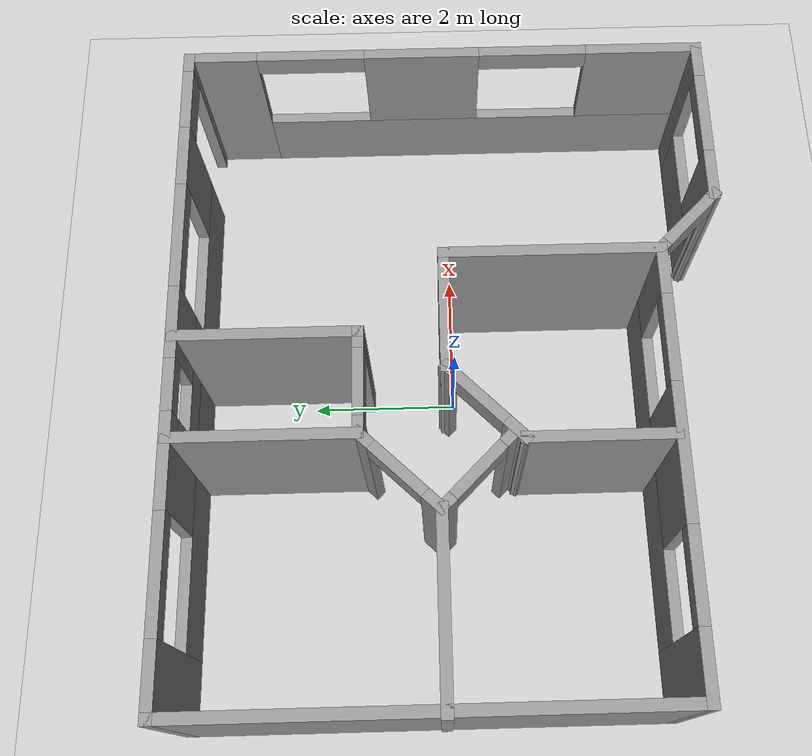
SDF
<sdf version="1.7">
 <world name="default">
  <light name="sun" type="directional">
   <pose>0 0 10 0 -0 0</pose>
   <diffuse>0.8 0.8 0.8 1</diffuse>
   <specular>0.2 0.2 0.2 1</specular>
   <attenuation>
    <range>1000</range>
    <constant>0.9</constant>
    <linear>0.01</linear>
    <quadratic>0.001</quadratic>
   </attenuation>
   <direction>-0.5 0.1 -0.9</direction>
   <spot><inner_angle>0</inner_angle><outer_angle>0</outer_angle><falloff>0</falloff></spot>
  </light>
  <model name="ground_plane">
   <static>1</static>
   <link name="link">
    <collision name="collision">
     <geometry><plane><normal>0 0 1</normal><size>100 100</size></plane></geometry>
     <surface>
      <contact><collide_bitmask>65535</collide_bitmask></contact>
      <friction><ode><mu>100</mu><mu2>50</mu2></ode></friction>
     </surface>
    </collision>
    <visual name="visual">
     <cast_shadows>0</cast_shadows>
     <geometry><plane><normal>0 0 1</normal><size>100 100</size></plane></geometry>
     <material>
      <script><uri>file://media/materials/scripts/gazebo.material</uri><name>Gazebo/Grey</name></script>
     </material>
    </visual>
   </link>
  </model>
  <gravity>0 0 -9.8</gravity>
  <magnetic_field>6e-06 2.3e-05 -4.2e-05</magnetic_field>
  <atmosphere type="adiabatic"/>
  <physics type="ode">
   <max_step_size>0.001</max_step_size>
   <real_time_factor>1</real_time_factor>
   <real_time_update_rate>1000</real_time_update_rate>
  </physics>
  <scene><ambient>0.4 0.4 0.4 1</ambient><background>0.7 0.7 0.7 1</background><shadows>1</shadows></scene>
  <spherical_coordinates>
   <surface_model>EARTH_WGS84</surface_model>
   <latitude_deg>0</latitude_deg>
   <longitude_deg>0</longitude_deg>
   <elevation>0</elevation>
   <heading_deg>0</heading_deg>
  </spherical_coordinates>
  <model name="modelo">
   <pose>-0.032278 0.017411 0 0 -0 0</pose>
   <link name="Wall_0">
    <pose>0.0115 3.56553 0 0 -0 0</pose>
    <visual name="Wall_0_Visual_0">
     <pose>-4.021 0 1.25 0 -0 0</pose>
     <geometry><box><size>0.958 0.15 2.5</size></box></geometry>
     <material>
      <script><uri>file://media/materials/scripts/gazebo.material</uri><name>Gazebo/Grey</name></script>
      <ambient>1 1 1 1</ambient>
     </material>
     <meta><layer>0</layer></meta>
    </visual>
    <collision name="Wall_0_Collision_0">
     <geometry><box><size>0.958 0.15 2.5</size></box></geometry>
     <pose>-4.021 0 1.25 0 -0 0</pose>
    </collision>
    <visual name="Wall_0_Visual_1">
     <pose>4.35075 0 1.25 0 -0 0</pose>
     <geometry><box><size>0.2985 0.15 2.5</size></box></geometry>
     <material>
      <script><uri>file://media/materials/scripts/gazebo.material</uri><name>Gazebo/Grey</name></script>
      <ambient>1 1 1 1</ambient>
     </material>
     <meta><layer>0</layer></meta>
    </visual>
    <collision name="Wall_0_Collision_1">
     <geometry><box><size>0.2985 0.15 2.5</size></box></geometry>
     <pose>4.35075 0 1.25 0 -0 0</pose>
    </collision>
    <visual name="Wall_0_Visual_2">
     <pose>-0.12025 0 0.5 0 -0 0</pose>
     <geometry><box><size>6.8435 0.15 1</size></box></geometry>
     <material>
      <script><uri>file://media/materials/scripts/gazebo.material</uri><name>Gazebo/Grey</name></script>
      <ambient>1 1 1 1</ambient>
     </material>
     <meta><layer>0</layer></meta>
    </visual>
    <collision name="Wall_0_Collision_2">
     <geometry><box><size>6.8435 0.15 1</size></box></geometry>
     <pose>-0.12025 0 0.5 0 -0 0</pose>
    </collision>
    <visual name="Wall_0_Visual_3">
     <pose>-1.41325 0 1.75 0 -0 0</pose>
     <geometry><box><size>1.2575 0.15 1.5</size></box></geometry>
     <material>
      <script><uri>file://media/materials/scripts/gazebo.material</uri><name>Gazebo/Grey</name></script>
      <ambient>1 1 1 1</ambient>
     </material>
     <meta><layer>0</layer></meta>
    </visual>
    <collision name="Wall_0_Collision_3">
     <geometry><box><size>1.2575 0.15 1.5</size></box></geometry>
     <pose>-1.41325 0 1.75 0 -0 0</pose>
    </collision>
    <visual name="Wall_0_Visual_4">
     <pose>2.855 0 1.75 0 -0 0</pose>
     <geometry><box><size>0.893 0.15 1.5</size></box></geometry>
     <material>
      <script><uri>file://media/materials/scripts/gazebo.material</uri><name>Gazebo/Grey</name></script>
      <ambient>1 1 1 1</ambient>
     </material>
     <meta><layer>0</layer></meta>
    </visual>
    <collision name="Wall_0_Collision_4">
     <geometry><box><size>0.893 0.15 1.5</size></box></geometry>
     <pose>2.855 0 1.75 0 -0 0</pose>
    </collision>
    <visual name="Wall_0_Visual_5">
     <pose>0.062 0 1.25 0 -0 0</pose>
     <geometry><box><size>1.693 0.15 0.5</size></box></geometry>
     <material>
      <script><uri>file://media/materials/scripts/gazebo.material</uri><name>Gazebo/Grey</name></script>
      <ambient>1 1 1 1</ambient>
     </material>
     <meta><layer>0</layer></meta>
    </visual>
    <collision name="Wall_0_Collision_5">
     <geometry><box><size>1.693 0.15 0.5</size></box></geometry>
     <pose>0.062 0 1.25 0 -0 0</pose>
    </collision>
    <visual name="Wall_0_Visual_6">
     <pose>0.412 0 2 0 -0 0</pose>
     <geometry><box><size>0.993 0.15 1</size></box></geometry>
     <material>
      <script><uri>file://media/materials/scripts/gazebo.material</uri><name>Gazebo/Grey</name></script>
      <ambient>1 1 1 1</ambient>
     </material>
     <meta><layer>0</layer></meta>
    </visual>
    <collision name="Wall_0_Collision_6">
     <geometry><box><size>0.993 0.15 1</size></box></geometry>
     <pose>0.412 0 2 0 -0 0</pose>
    </collision>
    <visual name="Wall_0_Visual_7">
     <pose>3.7515 0 2.3 0 -0 0</pose>
     <geometry><box><size>0.9 0.15 0.4</size></box></geometry>
     <material>
      <script><uri>file://media/materials/scripts/gazebo.material</uri><name>Gazebo/Grey</name></script>
      <ambient>1 1 1 1</ambient>
     </material>
     <meta><layer>0</layer></meta>
    </visual>
    <collision name="Wall_0_Collision_7">
     <geometry><box><size>0.9 0.15 0.4</size></box></geometry>
     <pose>3.7515 0 2.3 0 -0 0</pose>
    </collision>
    <visual name="Wall_0_Visual_8">
     <pose>-2.792 0 2.35 0 -0 0</pose>
     <geometry><box><size>1.5 0.15 0.3</size></box></geometry>
     <material>
      <script><uri>file://media/materials/scripts/gazebo.material</uri><name>Gazebo/Grey</name></script>
      <ambient>1 1 1 1</ambient>
     </material>
     <meta><layer>0</layer></meta>
    </visual>
    <collision name="Wall_0_Collision_8">
     <geometry><box><size>1.5 0.15 0.3</size></box></geometry>
     <pose>-2.792 0 2.35 0 -0 0</pose>
    </collision>
    <visual name="Wall_0_Visual_9">
     <pose>1.6585 0 2.35 0 -0 0</pose>
     <geometry><box><size>1.5 0.15 0.3</size></box></geometry>
     <material>
      <script><uri>file://media/materials/scripts/gazebo.material</uri><name>Gazebo/Grey</name></script>
      <ambient>1 1 1 1</ambient>
     </material>
     <meta><layer>0</layer></meta>
    </visual>
    <collision name="Wall_0_Collision_9">
     <geometry><box><size>1.5 0.15 0.3</size></box></geometry>
     <pose>1.6585 0 2.35 0 -0 0</pose>
    </collision>
    <visual name="Wall_0_Visual_10">
     <pose>-0.4345 0 2.35 0 -0 0</pose>
     <geometry><box><size>0.7 0.15 0.3</size></box></geometry>
     <material>
      <script><uri>file://media/materials/scripts/gazebo.material</uri><name>Gazebo/Grey</name></script>
      <ambient>1 1 1 1</ambient>
     </material>
     <meta><layer>0</layer></meta>
    </visual>
    <collision name="Wall_0_Collision_10">
     <geometry><box><size>0.7 0.15 0.3</size></box></geometry>
     <pose>-0.4345 0 2.35 0 -0 0</pose>
    </collision>
   </link>
   <link name="Wall_1">
    <pose>4.4365 0.015533 0 0 -0 -1.5708</pose>
    <visual name="Wall_1_Visual_0">
     <pose>-3.11719 0 1.25 0 -0 0</pose>
     <geometry><box><size>1.01563 0.15 2.5</size></box></geometry>
     <material>
      <script><uri>file://media/materials/scripts/gazebo.material</uri><name>Gazebo/Grey</name></script>
      <ambient>1 1 1 1</ambient>
     </material>
     <meta><layer>0</layer></meta>
    </visual>
    <collision name="Wall_1_Collision_0">
     <geometry><box><size>1.01563 0.15 2.5</size></box></geometry>
     <pose>-3.11719 0 1.25 0 -0 0</pose>
    </collision>
    <visual name="Wall_1_Visual_1">
     <pose>0.507815 0 0.5 0 -0 0</pose>
     <geometry><box><size>6.23437 0.15 1</size></box></geometry>
     <material>
      <script><uri>file://media/materials/scripts/gazebo.material</uri><name>Gazebo/Grey</name></script>
      <ambient>1 1 1 1</ambient>
     </material>
     <meta><layer>0</layer></meta>
    </visual>
    <collision name="Wall_1_Collision_1">
     <geometry><box><size>6.23437 0.15 1</size></box></geometry>
     <pose>0.507815 0 0.5 0 -0 0</pose>
    </collision>
    <visual name="Wall_1_Visual_2">
     <pose>-0.30392 0 1.75 0 -0 0</pose>
     <geometry><box><size>1.6109 0.15 1.5</size></box></geometry>
     <material>
      <script><uri>file://media/materials/scripts/gazebo.material</uri><name>Gazebo/Grey</name></script>
      <ambient>1 1 1 1</ambient>
     </material>
     <meta><layer>0</layer></meta>
    </visual>
    <collision name="Wall_1_Collision_2">
     <geometry><box><size>1.6109 0.15 1.5</size></box></geometry>
     <pose>-0.30392 0 1.75 0 -0 0</pose>
    </collision>
    <visual name="Wall_1_Visual_3">
     <pose>2.81326 0 1.75 0 -0 0</pose>
     <geometry><box><size>1.62347 0.15 1.5</size></box></geometry>
     <material>
      <script><uri>file://media/materials/scripts/gazebo.material</uri><name>Gazebo/Grey</name></script>
      <ambient>1 1 1 1</ambient>
     </material>
     <meta><layer>0</layer></meta>
    </visual>
    <collision name="Wall_1_Collision_3">
     <geometry><box><size>1.62347 0.15 1.5</size></box></geometry>
     <pose>2.81326 0 1.75 0 -0 0</pose>
    </collision>
    <visual name="Wall_1_Visual_4">
     <pose>-1.85937 0 2.35 0 -0 0</pose>
     <geometry><box><size>1.5 0.15 0.3</size></box></geometry>
     <material>
      <script><uri>file://media/materials/scripts/gazebo.material</uri><name>Gazebo/Grey</name></script>
      <ambient>1 1 1 1</ambient>
     </material>
     <meta><layer>0</layer></meta>
    </visual>
    <collision name="Wall_1_Collision_4">
     <geometry><box><size>1.5 0.15 0.3</size></box></geometry>
     <pose>-1.85937 0 2.35 0 -0 0</pose>
    </collision>
    <visual name="Wall_1_Visual_5">
     <pose>1.25153 0 2.35 0 -0 0</pose>
     <geometry><box><size>1.5 0.15 0.3</size></box></geometry>
     <material>
      <script><uri>file://media/materials/scripts/gazebo.material</uri><name>Gazebo/Grey</name></script>
      <ambient>1 1 1 1</ambient>
     </material>
     <meta><layer>0</layer></meta>
    </visual>
    <collision name="Wall_1_Collision_5">
     <geometry><box><size>1.5 0.15 0.3</size></box></geometry>
     <pose>1.25153 0 2.35 0 -0 0</pose>
    </collision>
   </link>
   <link name="Wall_12">
    <collision name="Wall_12_Collision">
     <geometry><box><size>2.5 0.15 2.5</size></box></geometry>
     <pose>0 0 1.25 0 -0 0</pose>
    </collision>
    <visual name="Wall_12_Visual">
     <pose>0 0 1.25 0 -0 0</pose>
     <geometry><box><size>2.5 0.15 2.5</size></box></geometry>
     <material>
      <script><uri>file://media/materials/scripts/gazebo.material</uri><name>Gazebo/Grey</name></script>
      <ambient>1 1 1 1</ambient>
     </material>
     <meta><layer>0</layer></meta>
    </visual>
    <pose>-3.2615 0.196033 0 0 -0 0</pose>
   </link>
   <link name="Wall_15">
    <collision name="Wall_15_Collision">
     <geometry><box><size>2.5 0.15 2.5</size></box></geometry>
     <pose>0 0 1.25 0 -0 0</pose>
    </collision>
    <visual name="Wall_15_Visual">
     <pose>0 0 1.25 0 -0 0</pose>
     <geometry><box><size>2.5 0.15 2.5</size></box></geometry>
     <material>
      <script><uri>file://media/materials/scripts/gazebo.material</uri><name>Gazebo/Grey</name></script>
      <ambient>1 1 1 1</ambient>
     </material>
     <meta><layer>0</layer></meta>
    </visual>
    <pose>-1.1245 2.37903 0 0 -0 -1.5708</pose>
   </link>
   <link name="Wall_16">
    <pose>-1.6055 0.700033 0 0 -0 -2.33285</pose>
    <visual name="Wall_16_Visual_0">
     <pose>-0.624686 0 1.25 0 -0 0</pose>
     <geometry><box><size>0.294008 0.15 2.5</size></box></geometry>
     <material>
      <script><uri>file://media/materials/scripts/gazebo.material</uri><name>Gazebo/Grey</name></script>
      <ambient>1 1 1 1</ambient>
     </material>
     <meta><layer>0</layer></meta>
    </visual>
    <collision name="Wall_16_Collision_0">
     <geometry><box><size>0.294008 0.15 2.5</size></box></geometry>
     <pose>-0.624686 0 1.25 0 -0 0</pose>
    </collision>
    <visual name="Wall_16_Visual_1">
     <pose>0.597004 0 1.25 0 -0 0</pose>
     <geometry><box><size>0.349372 0.15 2.5</size></box></geometry>
     <material>
      <script><uri>file://media/materials/scripts/gazebo.material</uri><name>Gazebo/Grey</name></script>
      <ambient>1 1 1 1</ambient>
     </material>
     <meta><layer>0</layer></meta>
    </visual>
    <collision name="Wall_16_Collision_1">
     <geometry><box><size>0.349372 0.15 2.5</size></box></geometry>
     <pose>0.597004 0 1.25 0 -0 0</pose>
    </collision>
    <visual name="Wall_16_Visual_2">
     <pose>-0.027682 0 2.3 0 -0 0</pose>
     <geometry><box><size>0.9 0.15 0.4</size></box></geometry>
     <material>
      <script><uri>file://media/materials/scripts/gazebo.material</uri><name>Gazebo/Grey</name></script>
      <ambient>1 1 1 1</ambient>
     </material>
     <meta><layer>0</layer></meta>
    </visual>
    <collision name="Wall_16_Collision_2">
     <geometry><box><size>0.9 0.15 0.4</size></box></geometry>
     <pose>-0.027682 0 2.3 0 -0 0</pose>
    </collision>
   </link>
   <link name="Wall_18">
    <pose>-0.4495 1.20403 0 0 -0 0</pose>
    <visual name="Wall_18_Visual_0">
     <pose>-0.59825 0 1.25 0 -0 0</pose>
     <geometry><box><size>0.3035 0.15 2.5</size></box></geometry>
     <material>
      <script><uri>file://media/materials/scripts/gazebo.material</uri><name>Gazebo/Grey</name></script>
      <ambient>1 1 1 1</ambient>
     </material>
     <meta><layer>0</layer></meta>
    </visual>
    <collision name="Wall_18_Collision_0">
     <geometry><box><size>0.3035 0.15 2.5</size></box></geometry>
     <pose>-0.59825 0 1.25 0 -0 0</pose>
    </collision>
    <visual name="Wall_18_Visual_1">
     <pose>0.60175 0 1.25 0 -0 0</pose>
     <geometry><box><size>0.2965 0.15 2.5</size></box></geometry>
     <material>
      <script><uri>file://media/materials/scripts/gazebo.material</uri><name>Gazebo/Grey</name></script>
      <ambient>1 1 1 1</ambient>
     </material>
     <meta><layer>0</layer></meta>
    </visual>
    <collision name="Wall_18_Collision_1">
     <geometry><box><size>0.2965 0.15 2.5</size></box></geometry>
     <pose>0.60175 0 1.25 0 -0 0</pose>
    </collision>
    <visual name="Wall_18_Visual_2">
     <pose>0.0035 0 2.3 0 -0 0</pose>
     <geometry><box><size>0.9 0.15 0.4</size></box></geometry>
     <material>
      <script><uri>file://media/materials/scripts/gazebo.material</uri><name>Gazebo/Grey</name></script>
      <ambient>1 1 1 1</ambient>
     </material>
     <meta><layer>0</layer></meta>
    </visual>
    <collision name="Wall_18_Collision_2">
     <geometry><box><size>0.9 0.15 0.4</size></box></geometry>
     <pose>0.0035 0 2.3 0 -0 0</pose>
    </collision>
   </link>
   <link name="Wall_19">
    <collision name="Wall_19_Collision">
     <geometry><box><size>2.5 0.15 2.5</size></box></geometry>
     <pose>0 0 1.25 0 -0 0</pose>
    </collision>
    <visual name="Wall_19_Visual">
     <pose>0 0 1.25 0 -0 0</pose>
     <geometry><box><size>2.5 0.15 2.5</size></box></geometry>
     <material>
      <script><uri>file://media/materials/scripts/gazebo.material</uri><name>Gazebo/Grey</name></script>
      <ambient>1 1 1 1</ambient>
     </material>
     <meta><layer>0</layer></meta>
    </visual>
    <pose>0.2255 2.37903 0 0 -0 1.5708</pose>
   </link>
   <link name="Wall_2">
    <pose>3.2615 -3.53447 0 0 -0 3.14159</pose>
    <visual name="Wall_2_Visual_0">
     <pose>-0.973394 0 1.25 0 -0 0</pose>
     <geometry><box><size>0.553212 0.15 2.5</size></box></geometry>
     <material>
      <script><uri>file://media/materials/scripts/gazebo.material</uri><name>Gazebo/Grey</name></script>
      <ambient>1 1 1 1</ambient>
     </material>
     <meta><layer>0</layer></meta>
    </visual>
    <collision name="Wall_2_Collision_0">
     <geometry><box><size>0.553212 0.15 2.5</size></box></geometry>
     <pose>-0.973394 0 1.25 0 -0 0</pose>
    </collision>
    <visual name="Wall_2_Visual_1">
     <pose>0.276606 0 0.5 0 -0 0</pose>
     <geometry><box><size>1.94679 0.15 1</size></box></geometry>
     <material>
      <script><uri>file://media/materials/scripts/gazebo.material</uri><name>Gazebo/Grey</name></script>
      <ambient>1 1 1 1</ambient>
     </material>
     <meta><layer>0</layer></meta>
    </visual>
    <collision name="Wall_2_Collision_1">
     <geometry><box><size>1.94679 0.15 1</size></box></geometry>
     <pose>0.276606 0 0.5 0 -0 0</pose>
    </collision>
    <visual name="Wall_2_Visual_2">
     <pose>0.876606 0 1.75 0 -0 0</pose>
     <geometry><box><size>0.746788 0.15 1.5</size></box></geometry>
     <material>
      <script><uri>file://media/materials/scripts/gazebo.material</uri><name>Gazebo/Grey</name></script>
      <ambient>1 1 1 1</ambient>
     </material>
     <meta><layer>0</layer></meta>
    </visual>
    <collision name="Wall_2_Collision_2">
     <geometry><box><size>0.746788 0.15 1.5</size></box></geometry>
     <pose>0.876606 0 1.75 0 -0 0</pose>
    </collision>
    <visual name="Wall_2_Visual_3">
     <pose>-0.096788 0 2.35 0 -0 0</pose>
     <geometry><box><size>1.2 0.15 0.3</size></box></geometry>
     <material>
      <script><uri>file://media/materials/scripts/gazebo.material</uri><name>Gazebo/Grey</name></script>
      <ambient>1 1 1 1</ambient>
     </material>
     <meta><layer>0</layer></meta>
    </visual>
    <collision name="Wall_2_Collision_3">
     <geometry><box><size>1.2 0.15 0.3</size></box></geometry>
     <pose>-0.096788 0 2.35 0 -0 0</pose>
    </collision>
   </link>
   <link name="Wall_26">
    <pose>-0.756955 -0.383947 0 0 -0 -2.35619</pose>
    <visual name="Wall_26_Visual_0">
     <pose>-0.651727 0 1.25 0 -0 0</pose>
     <geometry><box><size>0.196546 0.15 2.5</size></box></geometry>
     <material>
      <script><uri>file://media/materials/scripts/gazebo.material</uri><name>Gazebo/Grey</name></script>
      <ambient>1 1 1 1</ambient>
     </material>
     <meta><layer>0</layer></meta>
    </visual>
    <collision name="Wall_26_Collision_0">
     <geometry><box><size>0.196546 0.15 2.5</size></box></geometry>
     <pose>-0.651727 0 1.25 0 -0 0</pose>
    </collision>
    <visual name="Wall_26_Visual_1">
     <pose>0.548273 0 1.25 0 -0 0</pose>
     <geometry><box><size>0.403454 0.15 2.5</size></box></geometry>
     <material>
      <script><uri>file://media/materials/scripts/gazebo.material</uri><name>Gazebo/Grey</name></script>
      <ambient>1 1 1 1</ambient>
     </material>
     <meta><layer>0</layer></meta>
    </visual>
    <collision name="Wall_26_Collision_1">
     <geometry><box><size>0.403454 0.15 2.5</size></box></geometry>
     <pose>0.548273 0 1.25 0 -0 0</pose>
    </collision>
    <visual name="Wall_26_Visual_2">
     <pose>-0.103454 0 2.3 0 -0 0</pose>
     <geometry><box><size>0.9 0.15 0.4</size></box></geometry>
     <material>
      <script><uri>file://media/materials/scripts/gazebo.material</uri><name>Gazebo/Grey</name></script>
      <ambient>1 1 1 1</ambient>
     </material>
     <meta><layer>0</layer></meta>
    </visual>
    <collision name="Wall_26_Collision_2">
     <geometry><box><size>0.9 0.15 0.4</size></box></geometry>
     <pose>-0.103454 0 2.3 0 -0 0</pose>
    </collision>
   </link>
   <link name="Wall_27">
    <collision name="Wall_27_Collision">
     <geometry><box><size>2 0.15 2.5</size></box></geometry>
     <pose>0 0 1.25 0 -0 0</pose>
    </collision>
    <visual name="Wall_27_Visual">
     <pose>0 0 1.25 0 -0 0</pose>
     <geometry><box><size>2 0.15 2.5</size></box></geometry>
     <material>
      <script><uri>file://media/materials/scripts/gazebo.material</uri><name>Gazebo/Grey</name></script>
      <ambient>1 1 1 1</ambient>
     </material>
     <meta><layer>0</layer></meta>
    </visual>
    <pose>-1.23425 -1.78624 0 0 -0 -1.5708</pose>
   </link>
   <link name="Wall_29">
    <pose>-1.60943 -0.276634 0 0 -0 -0.780757</pose>
    <visual name="Wall_29_Visual_0">
     <pose>-0.608743 0 1.25 0 -0 0</pose>
     <geometry><box><size>0.275668 0.15 2.5</size></box></geometry>
     <material>
      <script><uri>file://media/materials/scripts/gazebo.material</uri><name>Gazebo/Grey</name></script>
      <ambient>1 1 1 1</ambient>
     </material>
     <meta><layer>0</layer></meta>
    </visual>
    <collision name="Wall_29_Collision_0">
     <geometry><box><size>0.275668 0.15 2.5</size></box></geometry>
     <pose>-0.608743 0 1.25 0 -0 0</pose>
    </collision>
    <visual name="Wall_29_Visual_1">
     <pose>0.587834 0 1.25 0 -0 0</pose>
     <geometry><box><size>0.317485 0.15 2.5</size></box></geometry>
     <material>
      <script><uri>file://media/materials/scripts/gazebo.material</uri><name>Gazebo/Grey</name></script>
      <ambient>1 1 1 1</ambient>
     </material>
     <meta><layer>0</layer></meta>
    </visual>
    <collision name="Wall_29_Collision_1">
     <geometry><box><size>0.317485 0.15 2.5</size></box></geometry>
     <pose>0.587834 0 1.25 0 -0 0</pose>
    </collision>
    <visual name="Wall_29_Visual_2">
     <pose>-0.020909 0 2.3 0 -0 0</pose>
     <geometry><box><size>0.9 0.15 0.4</size></box></geometry>
     <material>
      <script><uri>file://media/materials/scripts/gazebo.material</uri><name>Gazebo/Grey</name></script>
      <ambient>1 1 1 1</ambient>
     </material>
     <meta><layer>0</layer></meta>
    </visual>
    <collision name="Wall_29_Collision_2">
     <geometry><box><size>0.9 0.15 0.4</size></box></geometry>
     <pose>-0.020909 0 2.3 0 -0 0</pose>
    </collision>
   </link>
   <link name="Wall_3">
    <pose>1.69759 -3.14556 0 0 -0 2.35619</pose>
    <visual name="Wall_3_Visual_0">
     <pose>-0.54981 0 1.25 0 -0 0</pose>
     <geometry><box><size>0.15038 0.15 2.5</size></box></geometry>
     <material>
      <script><uri>file://media/materials/scripts/gazebo.material</uri><name>Gazebo/Grey</name></script>
      <ambient>1 1 1 1</ambient>
     </material>
     <meta><layer>0</layer></meta>
    </visual>
    <collision name="Wall_3_Collision_0">
     <geometry><box><size>0.15038 0.15 2.5</size></box></geometry>
     <pose>-0.54981 0 1.25 0 -0 0</pose>
    </collision>
    <visual name="Wall_3_Visual_1">
     <pose>0.52519 0 1.25 0 -0 0</pose>
     <geometry><box><size>0.19962 0.15 2.5</size></box></geometry>
     <material>
      <script><uri>file://media/materials/scripts/gazebo.material</uri><name>Gazebo/Grey</name></script>
      <ambient>1 1 1 1</ambient>
     </material>
     <meta><layer>0</layer></meta>
    </visual>
    <collision name="Wall_3_Collision_1">
     <geometry><box><size>0.19962 0.15 2.5</size></box></geometry>
     <pose>0.52519 0 1.25 0 -0 0</pose>
    </collision>
    <visual name="Wall_3_Visual_2">
     <pose>-0.02462 0 2.3 0 -0 0</pose>
     <geometry><box><size>0.9 0.15 0.4</size></box></geometry>
     <material>
      <script><uri>file://media/materials/scripts/gazebo.material</uri><name>Gazebo/Grey</name></script>
      <ambient>1 1 1 1</ambient>
     </material>
     <meta><layer>0</layer></meta>
    </visual>
    <collision name="Wall_3_Collision_2">
     <geometry><box><size>0.9 0.15 0.4</size></box></geometry>
     <pose>-0.02462 0 2.3 0 -0 0</pose>
    </collision>
   </link>
   <link name="Wall_5">
    <collision name="Wall_5_Collision">
     <geometry><box><size>6.5 0.15 2.5</size></box></geometry>
     <pose>0 0 1.25 0 -0 0</pose>
    </collision>
    <visual name="Wall_5_Visual">
     <pose>0 0 1.25 0 -0 0</pose>
     <geometry><box><size>6.5 0.15 2.5</size></box></geometry>
     <material>
      <script><uri>file://media/materials/scripts/gazebo.material</uri><name>Gazebo/Grey</name></script>
      <ambient>1 1 1 1</ambient>
     </material>
     <meta><layer>0</layer></meta>
    </visual>
    <pose>-4.4135 0.390533 0 0 -0 -1.5708</pose>
   </link>
   <link name="Wall_6">
    <pose>-1.55241 -2.77056 0 0 -0 0.004861</pose>
    <visual name="Wall_6_Visual_0">
     <pose>-2.47404 0 1.25 0 -0 0</pose>
     <geometry><box><size>0.92416 0.15 2.5</size></box></geometry>
     <material>
      <script><uri>file://media/materials/scripts/gazebo.material</uri><name>Gazebo/Grey</name></script>
      <ambient>1 1 1 1</ambient>
     </material>
     <meta><layer>0</layer></meta>
    </visual>
    <collision name="Wall_6_Collision_0">
     <geometry><box><size>0.92416 0.15 2.5</size></box></geometry>
     <pose>-2.47404 0 1.25 0 -0 0</pose>
    </collision>
    <visual name="Wall_6_Visual_1">
     <pose>0.46208 0 0.5 0 -0 0</pose>
     <geometry><box><size>4.94809 0.15 1</size></box></geometry>
     <material>
      <script><uri>file://media/materials/scripts/gazebo.material</uri><name>Gazebo/Grey</name></script>
      <ambient>1 1 1 1</ambient>
     </material>
     <meta><layer>0</layer></meta>
    </visual>
    <collision name="Wall_6_Collision_1">
     <geometry><box><size>4.94809 0.15 1</size></box></geometry>
     <pose>0.46208 0 0.5 0 -0 0</pose>
    </collision>
    <visual name="Wall_6_Visual_2">
     <pose>0.094657 0 1.75 0 -0 0</pose>
     <geometry><box><size>1.81324 0.15 1.5</size></box></geometry>
     <material>
      <script><uri>file://media/materials/scripts/gazebo.material</uri><name>Gazebo/Grey</name></script>
      <ambient>1 1 1 1</ambient>
     </material>
     <meta><layer>0</layer></meta>
    </visual>
    <collision name="Wall_6_Collision_2">
     <geometry><box><size>1.81324 0.15 1.5</size></box></geometry>
     <pose>0.094657 0 1.75 0 -0 0</pose>
    </collision>
    <visual name="Wall_6_Visual_3">
     <pose>2.5687 0 1.75 0 -0 0</pose>
     <geometry><box><size>0.734846 0.15 1.5</size></box></geometry>
     <material>
      <script><uri>file://media/materials/scripts/gazebo.material</uri><name>Gazebo/Grey</name></script>
      <ambient>1 1 1 1</ambient>
     </material>
     <meta><layer>0</layer></meta>
    </visual>
    <collision name="Wall_6_Collision_3">
     <geometry><box><size>0.734846 0.15 1.5</size></box></geometry>
     <pose>2.5687 0 1.75 0 -0 0</pose>
    </collision>
    <visual name="Wall_6_Visual_4">
     <pose>-1.41196 0 2.35 0 -0 0</pose>
     <geometry><box><size>1.2 0.15 0.3</size></box></geometry>
     <material>
      <script><uri>file://media/materials/scripts/gazebo.material</uri><name>Gazebo/Grey</name></script>
      <ambient>1 1 1 1</ambient>
     </material>
     <meta><layer>0</layer></meta>
    </visual>
    <collision name="Wall_6_Collision_4">
     <geometry><box><size>1.2 0.15 0.3</size></box></geometry>
     <pose>-1.41196 0 2.35 0 -0 0</pose>
    </collision>
    <visual name="Wall_6_Visual_5">
     <pose>1.60128 0 2.35 0 -0 0</pose>
     <geometry><box><size>1.2 0.15 0.3</size></box></geometry>
     <material>
      <script><uri>file://media/materials/scripts/gazebo.material</uri><name>Gazebo/Grey</name></script>
      <ambient>1 1 1 1</ambient>
     </material>
     <meta><layer>0</layer></meta>
    </visual>
    <collision name="Wall_6_Collision_5">
     <geometry><box><size>1.2 0.15 0.3</size></box></geometry>
     <pose>1.60128 0 2.35 0 -0 0</pose>
    </collision>
   </link>
   <link name="Wall_7">
    <collision name="Wall_7_Collision">
     <geometry><box><size>3 0.15 2.5</size></box></geometry>
     <pose>0 0 1.25 0 -0 0</pose>
    </collision>
    <visual name="Wall_7_Visual">
     <pose>0 0 1.25 0 -0 0</pose>
     <geometry><box><size>3 0.15 2.5</size></box></geometry>
     <material>
      <script><uri>file://media/materials/scripts/gazebo.material</uri><name>Gazebo/Grey</name></script>
      <ambient>1 1 1 1</ambient>
     </material>
     <meta><layer>0</layer></meta>
    </visual>
    <pose>1.30868 -1.33165 0 0 -0 1.5708</pose>
   </link>
   <link name="Wall_8">
    <collision name="Wall_8_Collision">
     <geometry><box><size>1.73834 0.15 2.5</size></box></geometry>
     <pose>0 0 1.25 0 -0 0</pose>
    </collision>
    <visual name="Wall_8_Visual">
     <pose>0 0 1.25 0 -0 0</pose>
     <geometry><box><size>1.73834 0.15 2.5</size></box></geometry>
     <material>
      <script><uri>file://media/materials/scripts/gazebo.material</uri><name>Gazebo/Grey</name></script>
      <ambient>1 1 1 1</ambient>
     </material>
     <meta><layer>0</layer></meta>
    </visual>
    <pose>0.514512 0.09335 0 0 -0 3.14159</pose>
   </link>
   <static>1</static>
  </model>
 </world>
</sdf>
